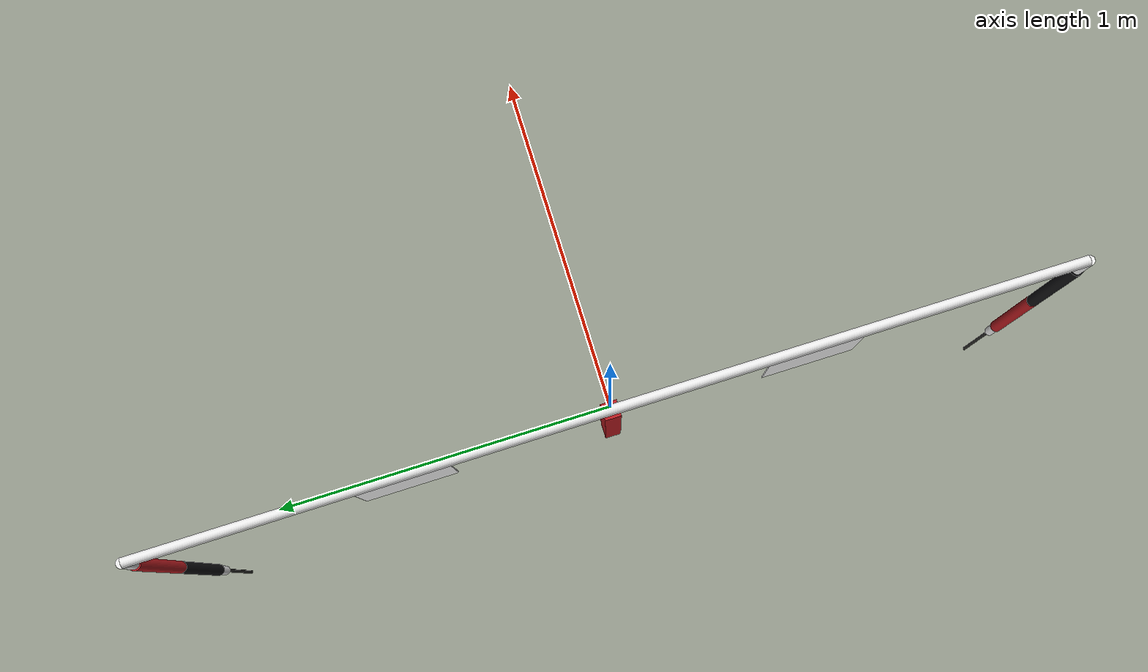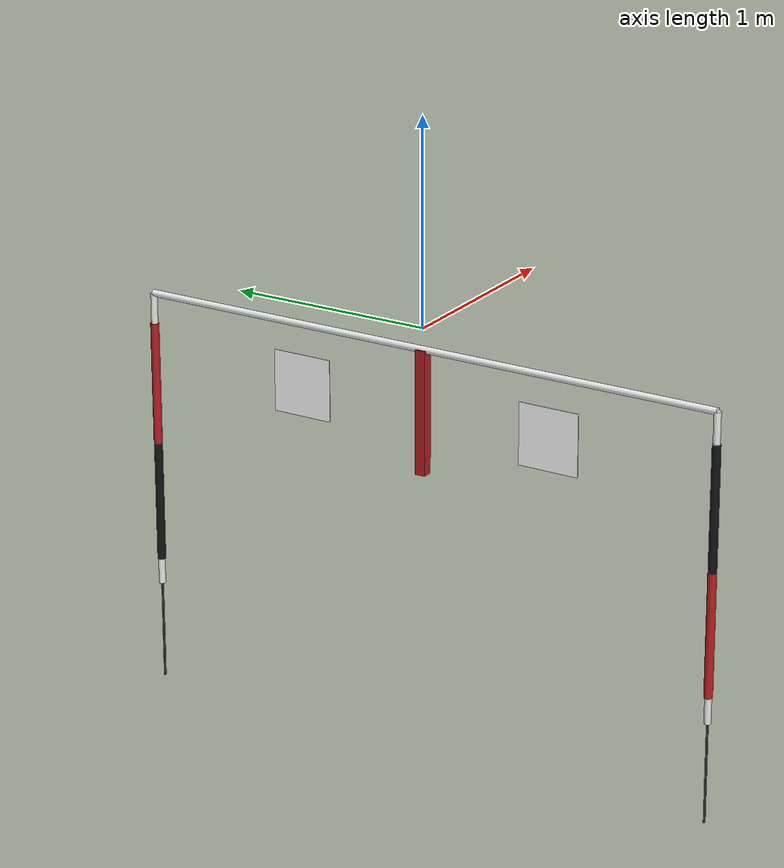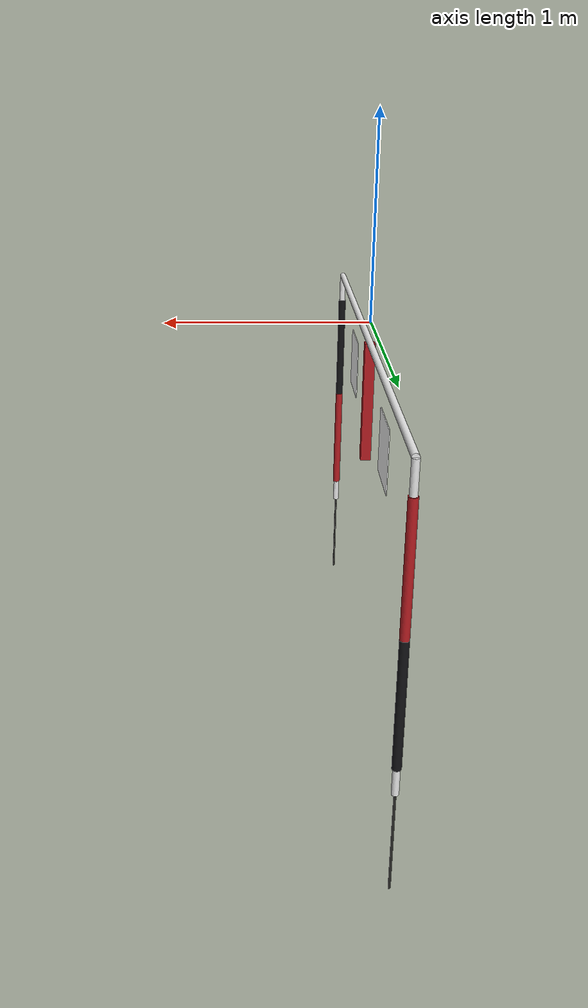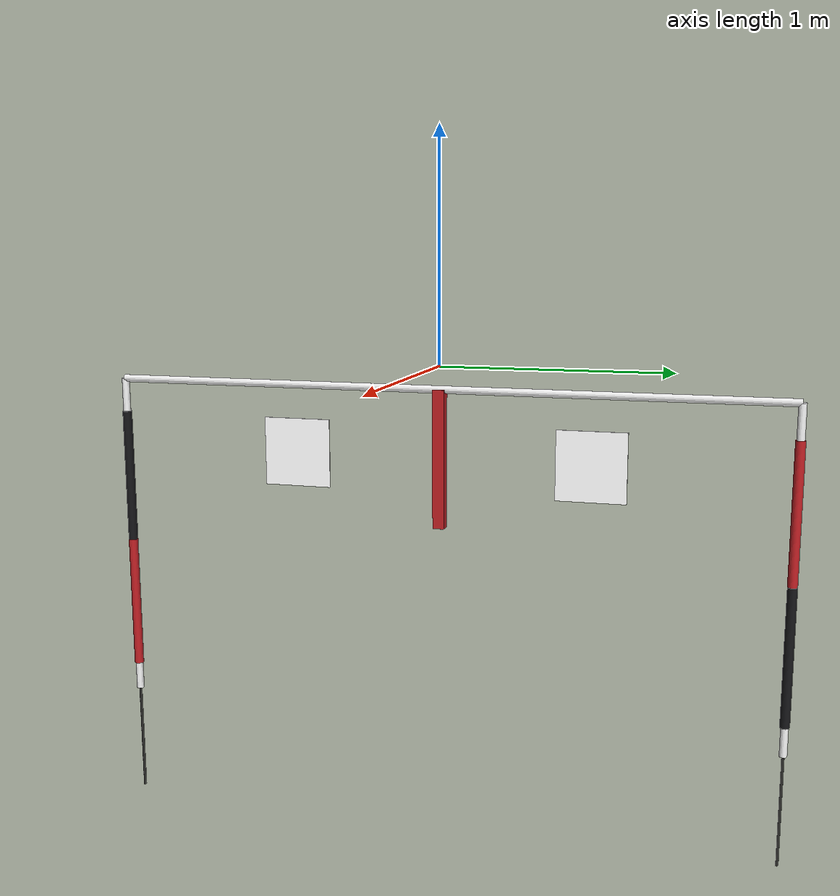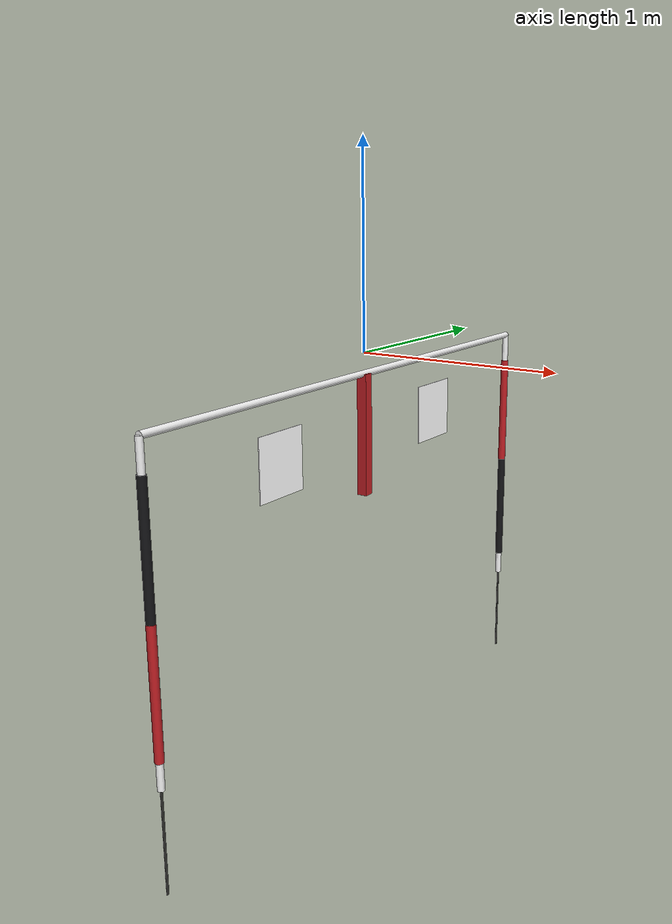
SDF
<?xml version="1.0"?>
<sdf version="1.9">
  <model name="robosub_gate">
    <static>false</static>
    <plugin filename="gz-sim-label-system" name="gz::sim::systems::Label">
      <label>12</label>
    </plugin>
    <link name="top_bar">
      <pose>0 0 -0.1 1.5708 0 0</pose>
      <inertial>
        <pose>0 0 0 0 0 0</pose>
        <mass>5</mass>
        <inertia>
          <ixx>3.75035</ixx><ixy>0</ixy><ixz>0</ixz>
          <iyy>3.75035</iyy><iyz>0</iyz>
          <izz>0.000697225</izz>
        </inertia>
      </inertial>
      <visual name="top_bar_visual">
        <pose>0 0 0 0 0 0</pose>
        <geometry><cylinder><radius>0.0167</radius><length>3</length></cylinder></geometry>
        <material>
          <ambient>0.92 0.92 0.92 1</ambient>
          <diffuse>0.92 0.92 0.92 1</diffuse>
          <specular>0.55 0.55 0.55 1</specular>
          <emissive>0.258 0.258 0.258 1</emissive>
          <pbr>
            <metal>
              <albedo_map>model://robosub_textures/rough_pvc.png</albedo_map>
              <metalness>0.0</metalness>
              <roughness_map>model://robosub_textures/rough_pvc.png</roughness_map>
              <normal_map>model://robosub_textures/norm_pvc.png</normal_map>
            </metal>
          </pbr>
        </material>
      </visual>
      <collision name="top_bar_collision">
        <pose>0 0 0 0 0 0</pose>
        <geometry><cylinder><radius>0.0167</radius><length>3</length></cylinder></geometry>
      </collision>
    </link>
    <link name="post_port">
      <pose>0 -1.5 -0.85 0 0 0</pose>
      <inertial>
        <pose>0 0 0 0 0 0</pose>
        <mass>4</mass>
        <inertia>
          <ixx>0.750279</ixx><ixy>0</ixy><ixz>0</ixz>
          <iyy>0.750279</iyy><iyz>0</iyz>
          <izz>0.00055778</izz>
        </inertia>
      </inertial>
      <visual name="post_port_visual">
        <pose>0 0 0 0 0 0</pose>
        <geometry><cylinder><radius>0.0167</radius><length>1.5</length></cylinder></geometry>
        <material>
          <ambient>0.92 0.92 0.92 1</ambient>
          <diffuse>0.92 0.92 0.92 1</diffuse>
          <specular>0.55 0.55 0.55 1</specular>
          <emissive>0.258 0.258 0.258 1</emissive>
          <pbr>
            <metal>
              <albedo_map>model://robosub_textures/rough_pvc.png</albedo_map>
              <metalness>0.0</metalness>
              <roughness_map>model://robosub_textures/rough_pvc.png</roughness_map>
              <normal_map>model://robosub_textures/norm_pvc.png</normal_map>
            </metal>
          </pbr>
        </material>
      </visual>
      <collision name="post_port_collision">
        <pose>0 0 0 0 0 0</pose>
        <geometry><cylinder><radius>0.0167</radius><length>1.5</length></cylinder></geometry>
      </collision>
    </link>
    <link name="band_port_upper">
      <pose>0 -1.5 -0.5572 0 0 0</pose>
      <inertial>
        <pose>0 0 0 0 0 0</pose>
        <mass>0.4</mass>
        <inertia>
          <ixx>0.0124306</ixx><ixy>0</ixy><ixz>0</ixz>
          <iyy>0.0124306</iyy><iyz>0</iyz>
          <izz>8.71531e-05</izz>
        </inertia>
      </inertial>
      <visual name="band_port_upper_visual">
        <pose>0 0 0 0 0 0</pose>
        <geometry><cylinder><radius>0.020875</radius><length>0.6096</length></cylinder></geometry>
        <material>
          <ambient>0.07 0.07 0.08 1</ambient>
          <diffuse>0.07 0.07 0.08 1</diffuse>
          <specular>0.2 0.2 0.2 1</specular>
          <emissive>0.0154 0.0154 0.0176 1</emissive>
        </material>
      </visual>
    </link>
    <link name="band_port_lower">
      <pose>0 -1.5 -1.1668 0 0 0</pose>
      <inertial>
        <pose>0 0 0 0 0 0</pose>
        <mass>0.4</mass>
        <inertia>
          <ixx>0.0124306</ixx><ixy>0</ixy><ixz>0</ixz>
          <iyy>0.0124306</iyy><iyz>0</iyz>
          <izz>8.71531e-05</izz>
        </inertia>
      </inertial>
      <visual name="band_port_lower_visual">
        <pose>0 0 0 0 0 0</pose>
        <geometry><cylinder><radius>0.020875</radius><length>0.6096</length></cylinder></geometry>
        <material>
          <ambient>0.72 0.11 0.13 1</ambient>
          <diffuse>0.72 0.11 0.13 1</diffuse>
          <specular>0.2 0.2 0.2 1</specular>
          <emissive>0.1584 0.0242 0.0286 1</emissive>
        </material>
      </visual>
    </link>
    <link name="post_stbd">
      <pose>0 1.5 -0.85 0 0 0</pose>
      <inertial>
        <pose>0 0 0 0 0 0</pose>
        <mass>4</mass>
        <inertia>
          <ixx>0.750279</ixx><ixy>0</ixy><ixz>0</ixz>
          <iyy>0.750279</iyy><iyz>0</iyz>
          <izz>0.00055778</izz>
        </inertia>
      </inertial>
      <visual name="post_stbd_visual">
        <pose>0 0 0 0 0 0</pose>
        <geometry><cylinder><radius>0.0167</radius><length>1.5</length></cylinder></geometry>
        <material>
          <ambient>0.92 0.92 0.92 1</ambient>
          <diffuse>0.92 0.92 0.92 1</diffuse>
          <specular>0.55 0.55 0.55 1</specular>
          <emissive>0.258 0.258 0.258 1</emissive>
          <pbr>
            <metal>
              <albedo_map>model://robosub_textures/rough_pvc.png</albedo_map>
              <metalness>0.0</metalness>
              <roughness_map>model://robosub_textures/rough_pvc.png</roughness_map>
              <normal_map>model://robosub_textures/norm_pvc.png</normal_map>
            </metal>
          </pbr>
        </material>
      </visual>
      <collision name="post_stbd_collision">
        <pose>0 0 0 0 0 0</pose>
        <geometry><cylinder><radius>0.0167</radius><length>1.5</length></cylinder></geometry>
      </collision>
    </link>
    <link name="band_stbd_upper">
      <pose>0 1.5 -0.5572 0 0 0</pose>
      <inertial>
        <pose>0 0 0 0 0 0</pose>
        <mass>0.4</mass>
        <inertia>
          <ixx>0.0124306</ixx><ixy>0</ixy><ixz>0</ixz>
          <iyy>0.0124306</iyy><iyz>0</iyz>
          <izz>8.71531e-05</izz>
        </inertia>
      </inertial>
      <visual name="band_stbd_upper_visual">
        <pose>0 0 0 0 0 0</pose>
        <geometry><cylinder><radius>0.020875</radius><length>0.6096</length></cylinder></geometry>
        <material>
          <ambient>0.72 0.11 0.13 1</ambient>
          <diffuse>0.72 0.11 0.13 1</diffuse>
          <specular>0.2 0.2 0.2 1</specular>
          <emissive>0.1584 0.0242 0.0286 1</emissive>
        </material>
      </visual>
    </link>
    <link name="band_stbd_lower">
      <pose>0 1.5 -1.1668 0 0 0</pose>
      <inertial>
        <pose>0 0 0 0 0 0</pose>
        <mass>0.4</mass>
        <inertia>
          <ixx>0.0124306</ixx><ixy>0</ixy><ixz>0</ixz>
          <iyy>0.0124306</iyy><iyz>0</iyz>
          <izz>8.71531e-05</izz>
        </inertia>
      </inertial>
      <visual name="band_stbd_lower_visual">
        <pose>0 0 0 0 0 0</pose>
        <geometry><cylinder><radius>0.020875</radius><length>0.6096</length></cylinder></geometry>
        <material>
          <ambient>0.07 0.07 0.08 1</ambient>
          <diffuse>0.07 0.07 0.08 1</diffuse>
          <specular>0.2 0.2 0.2 1</specular>
          <emissive>0.0154 0.0154 0.0176 1</emissive>
        </material>
      </visual>
    </link>
    <link name="divider">
      <pose>0 0 -0.4048 0 0 0</pose>
      <inertial>
        <pose>0 0 0 0 0 0</pose>
        <mass>0.5</mass>
        <inertia>
          <ixx>0.0155914</ixx><ixy>0</ixy><ixz>0</ixz>
          <iyy>0.0155914</iyy><iyz>0</iyz>
          <izz>0.000215053</izz>
        </inertia>
      </inertial>
      <visual name="divider_visual">
        <pose>0 0 0 0 0 0</pose>
        <geometry><box><size>0.0508 0.0508 0.6096</size></box></geometry>
        <material>
          <ambient>0.72 0.11 0.13 1</ambient>
          <diffuse>0.72 0.11 0.13 1</diffuse>
          <specular>0.2 0.2 0.2 1</specular>
          <emissive>0.1584 0.0242 0.0286 1</emissive>
        </material>
      </visual>
      <collision name="divider_collision">
        <pose>0 0 0 0 0 0</pose>
        <geometry><box><size>0.0508 0.0508 0.6096</size></box></geometry>
      </collision>
    </link>
    <link name="sign_survey_repair">
      <pose>0 -0.66 -0.4049 0 0 0</pose>
      <inertial>
        <pose>0 0 0 0 0 0</pose>
        <mass>0.15</mass>
        <inertia>
          <ixx>0.00232562</ixx><ixy>0</ixy><ixz>0</ixz>
          <iyy>0.00116301</iyy><iyz>0</iyz>
          <izz>0.00116301</izz>
        </inertia>
      </inertial>
      <visual name="sign_survey_repair_visual">
        <pose>0 0 0 0 0 0</pose>
        <geometry><box><size>0.004 0.305 0.305</size></box></geometry>
        <material>
          <ambient>1 1 1 1</ambient>
          <diffuse>1 1 1 1</diffuse>
          <specular>0.06 0.06 0.06 1</specular>
          <emissive>0.1 0.1 0.1 1</emissive>
          <pbr>
            <metal>
              <albedo_map>model://robosub_textures/role_compass.png</albedo_map>
              <metalness>0.0</metalness>
              <roughness>0.55</roughness>
            </metal>
          </pbr>
        </material>
      </visual>
      <collision name="sign_survey_repair_collision">
        <pose>0 0 0 0 0 0</pose>
        <geometry><box><size>0.004 0.305 0.305</size></box></geometry>
      </collision>
    </link>
    <link name="sign_search_rescue">
      <pose>0 0.66 -0.4049 0 0 0</pose>
      <inertial>
        <pose>0 0 0 0 0 0</pose>
        <mass>0.15</mass>
        <inertia>
          <ixx>0.00232562</ixx><ixy>0</ixy><ixz>0</ixz>
          <iyy>0.00116301</iyy><iyz>0</iyz>
          <izz>0.00116301</izz>
        </inertia>
      </inertial>
      <visual name="sign_search_rescue_visual">
        <pose>0 0 0 0 0 0</pose>
        <geometry><box><size>0.004 0.305 0.305</size></box></geometry>
        <material>
          <ambient>1 1 1 1</ambient>
          <diffuse>1 1 1 1</diffuse>
          <specular>0.06 0.06 0.06 1</specular>
          <emissive>0.1 0.1 0.1 1</emissive>
          <pbr>
            <metal>
              <albedo_map>model://robosub_textures/role_sos.png</albedo_map>
              <metalness>0.0</metalness>
              <roughness>0.55</roughness>
            </metal>
          </pbr>
        </material>
      </visual>
      <collision name="sign_search_rescue_collision">
        <pose>0 0 0 0 0 0</pose>
        <geometry><box><size>0.004 0.305 0.305</size></box></geometry>
      </collision>
    </link>
    <link name="mooring_port">
      <pose>0 -1.5 -1.85 0 0 0</pose>
      <inertial>
        <pose>0 0 0 0 0 0</pose>
        <mass>0.1</mass>
        <inertia>
          <ixx>0.00208423</ixx><ixy>0</ixy><ixz>0</ixz>
          <iyy>0.00208423</iyy><iyz>0</iyz>
          <izz>1.8e-06</izz>
        </inertia>
      </inertial>
      <visual name="mooring_port_visual">
        <pose>0 0 0 0 0 0</pose>
        <geometry><cylinder><radius>0.006</radius><length>0.5</length></cylinder></geometry>
        <material>
          <ambient>0.15 0.15 0.14 1</ambient>
          <diffuse>0.15 0.15 0.14 1</diffuse>
          <specular>0.2 0.2 0.2 1</specular>
          <emissive>0.0375 0.0375 0.035 1</emissive>
        </material>
      </visual>
    </link>
    <link name="mooring_stbd">
      <pose>0 1.5 -1.85 0 0 0</pose>
      <inertial>
        <pose>0 0 0 0 0 0</pose>
        <mass>0.1</mass>
        <inertia>
          <ixx>0.00208423</ixx><ixy>0</ixy><ixz>0</ixz>
          <iyy>0.00208423</iyy><iyz>0</iyz>
          <izz>1.8e-06</izz>
        </inertia>
      </inertial>
      <visual name="mooring_stbd_visual">
        <pose>0 0 0 0 0 0</pose>
        <geometry><cylinder><radius>0.006</radius><length>0.5</length></cylinder></geometry>
        <material>
          <ambient>0.15 0.15 0.14 1</ambient>
          <diffuse>0.15 0.15 0.14 1</diffuse>
          <specular>0.2 0.2 0.2 1</specular>
          <emissive>0.0375 0.0375 0.035 1</emissive>
        </material>
      </visual>
    </link>
    <joint name="top_bar_post_port_fix" type="fixed">
      <parent>top_bar</parent>
      <child>post_port</child>
    </joint>
    <joint name="top_bar_post_stbd_fix" type="fixed">
      <parent>top_bar</parent>
      <child>post_stbd</child>
    </joint>
    <joint name="top_bar_band_port_upper_fix" type="fixed">
      <parent>top_bar</parent>
      <child>band_port_upper</child>
    </joint>
    <joint name="top_bar_band_port_lower_fix" type="fixed">
      <parent>top_bar</parent>
      <child>band_port_lower</child>
    </joint>
    <joint name="top_bar_band_stbd_upper_fix" type="fixed">
      <parent>top_bar</parent>
      <child>band_stbd_upper</child>
    </joint>
    <joint name="top_bar_band_stbd_lower_fix" type="fixed">
      <parent>top_bar</parent>
      <child>band_stbd_lower</child>
    </joint>
    <joint name="top_bar_mooring_port_fix" type="fixed">
      <parent>top_bar</parent>
      <child>mooring_port</child>
    </joint>
    <joint name="top_bar_mooring_stbd_fix" type="fixed">
      <parent>top_bar</parent>
      <child>mooring_stbd</child>
    </joint>
    <joint name="gate_mooring" type="fixed">
      <parent>world</parent>
      <child>top_bar</child>
    </joint>
    <joint name="sign_survey_repair_hinge" type="revolute">
      <parent>top_bar</parent>
      <child>sign_survey_repair</child>
      <pose>0 0 0.1525 0 0 0</pose>
      <axis>
        <xyz>0 1 0</xyz>
        <limit>
          <lower>-1</lower>
          <upper>1</upper>
        </limit>
        <dynamics>
          <damping>0.4</damping>
          <spring_stiffness>3</spring_stiffness>
          <spring_reference>0</spring_reference>
        </dynamics>
      </axis>
    </joint>
    <plugin filename="gz-sim-hydrodynamics-system" name="gz::sim::systems::Hydrodynamics">
      <link_name>sign_survey_repair</link_name>
      <water_density>1000.0</water_density>
      <xUabsU>-55.815</xUabsU>
      <yVabsV>-55.815</yVabsV>
      <zWabsW>-0.732</zWabsW>
      <kPabsP>-1.29805</kPabsP>
      <mQabsQ>-1.29805</mQabsQ>
      <nRabsR>-1.29805</nRabsR>
    </plugin>
    <joint name="sign_search_rescue_hinge" type="revolute">
      <parent>top_bar</parent>
      <child>sign_search_rescue</child>
      <pose>0 0 0.1525 0 0 0</pose>
      <axis>
        <xyz>0 1 0</xyz>
        <limit>
          <lower>-1</lower>
          <upper>1</upper>
        </limit>
        <dynamics>
          <damping>0.4</damping>
          <spring_stiffness>3</spring_stiffness>
          <spring_reference>0</spring_reference>
        </dynamics>
      </axis>
    </joint>
    <plugin filename="gz-sim-hydrodynamics-system" name="gz::sim::systems::Hydrodynamics">
      <link_name>sign_search_rescue</link_name>
      <water_density>1000.0</water_density>
      <xUabsU>-55.815</xUabsU>
      <yVabsV>-55.815</yVabsV>
      <zWabsW>-0.732</zWabsW>
      <kPabsP>-1.29805</kPabsP>
      <mQabsQ>-1.29805</mQabsQ>
      <nRabsR>-1.29805</nRabsR>
    </plugin>
    <joint name="divider_hinge" type="revolute">
      <parent>top_bar</parent>
      <child>divider</child>
      <pose>0 0 0.3048 0 0 0</pose>
      <axis>
        <xyz>0 1 0</xyz>
        <limit>
          <lower>-1</lower>
          <upper>1</upper>
        </limit>
        <dynamics>
          <damping>0.8</damping>
          <spring_stiffness>6</spring_stiffness>
          <spring_reference>0</spring_reference>
        </dynamics>
      </axis>
    </joint>
    <plugin filename="gz-sim-hydrodynamics-system" name="gz::sim::systems::Hydrodynamics">
      <link_name>divider</link_name>
      <water_density>1000.0</water_density>
      <xUabsU>-222.967</xUabsU>
      <yVabsV>-222.967</yVabsV>
      <zWabsW>-18.5806</zWabsW>
      <kPabsP>-20.7143</kPabsP>
      <mQabsQ>-20.7143</mQabsQ>
      <nRabsR>-20.7143</nRabsR>
    </plugin>
  </model>
</sdf>
